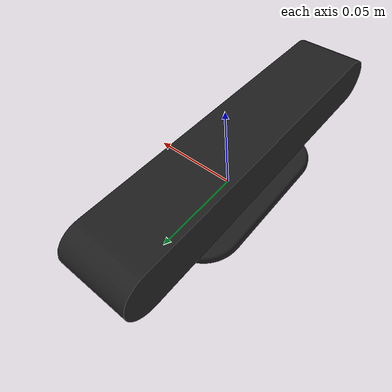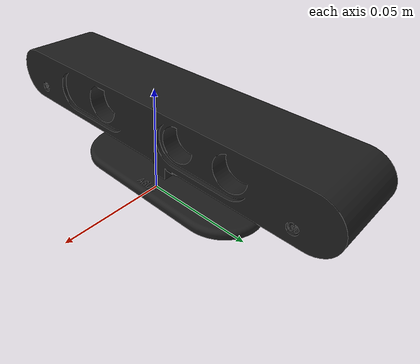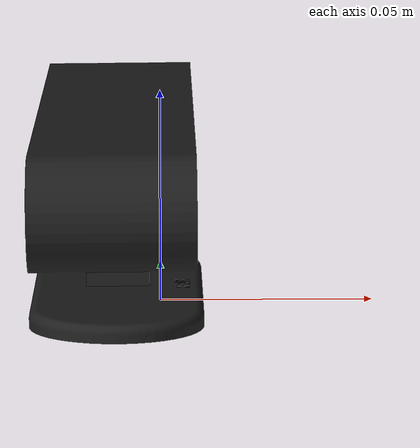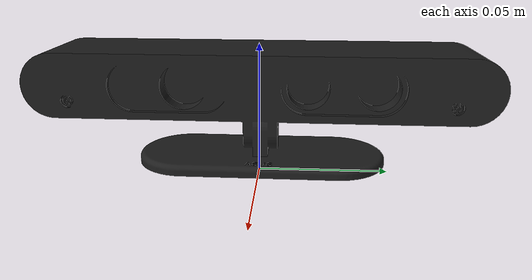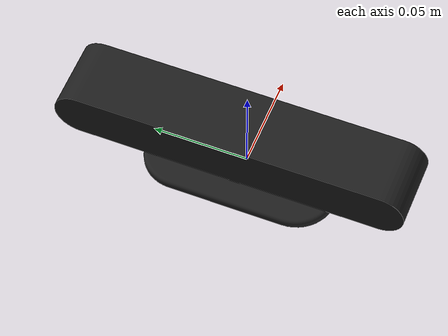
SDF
<?xml version="1.0" ?>
<sdf version="1.5">
	<model name="asus_xtion_pro_live">
		<static>1</static>
		<pose>0 0 0.0334 0 0 0</pose>
		<link name="link">
			<inertial>
				<mass>0.1</mass>
			</inertial>
			<collision name="collision">
				<pose>-0.01 0 -0.01 0 0 0</pose>
				<geometry>
					<box>
						<size>0.04 0.18 0.0468</size>
					</box>
				</geometry>
			</collision>
			<visual name="visual">
				<transparency>0</transparency>
				<geometry>
					<mesh>
						<uri>model://asus_xtion_pro_live/meshes/asus_xtion_pro_live.dae</uri>
					</mesh>
				</geometry>
				<material>
					<script>
						<name>Gazebo/FlatBlack</name>
						<uri>file://materials/scripts/gazebo.material</uri>
					</script>
				</material>
			</visual>
			<sensor name="sensor" type="depth">
				<update_rate>30</update_rate>
				<camera>
					<horizontal_fov>1.021018</horizontal_fov>
					<image>
						<width>640</width>
						<height>480</height>
						<format>B8G8R8</format>
					</image>
					<clip>
						<near>0.5</near>
						<far>3.5</far>
					</clip>
				</camera>
			</sensor>
		</link>
	</model>
</sdf>
